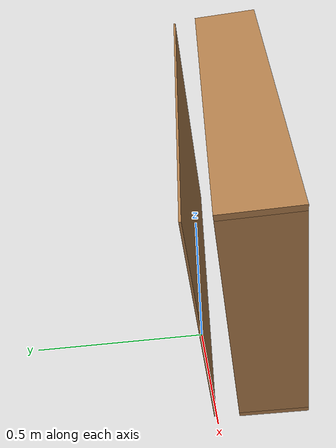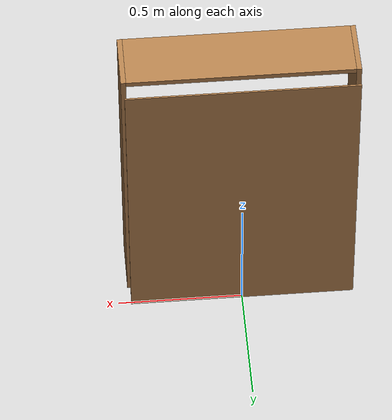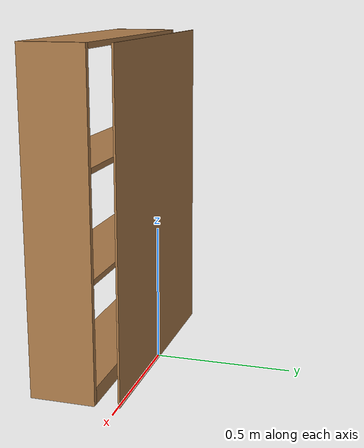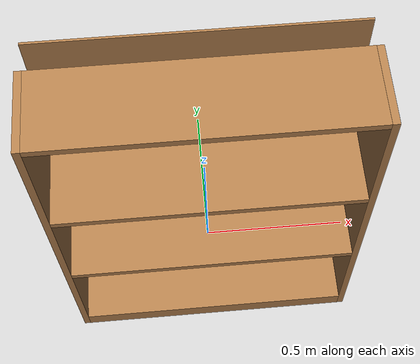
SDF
<?xml version='1.0'?>
<sdf version='1.7'>
  <model name='bookshelf_0'>
    <link name='link'>
      <inertial>
        <mass>0.599067</mass>
        <inertia>
          <ixx>0.00274522</ixx>
          <ixy>0</ixy>
          <ixz>0</ixz>
          <iyy>0.0386797</iyy>
          <iyz>0</iyz>
          <izz>0.041385</izz>
        </inertia>
        <pose>0 0 0 0 -0 0</pose>
      </inertial>
      <self_collide>0</self_collide>
      <enable_wind>0</enable_wind>
      <kinematic>0</kinematic>
      <pose>0 0 0 0 -0 0</pose>
      <visual name='visual1'>
        <pose>0 0.005 0.6 0 -0 0</pose>
        <geometry>
          <box>
            <size>0.9 0.006791 1.2</size>
          </box>
        </geometry>
        <material>
          <script>
            <uri>file://media/materials/scripts/gazebo.material</uri>
            <name>Gazebo/Wood</name>
          </script>
          <shader type='pixel'/>
        </material>
        <transparency>0</transparency>
        <cast_shadows>1</cast_shadows>
      </visual>
      <visual name='visual2'>
        <pose>0.45 -0.195 0.6 0 -0 0</pose>
        <geometry>
          <box>
            <size>0.02 0.233645 1.2</size>
          </box>
        </geometry>
        <material>
          <script>
            <uri>file://media/materials/scripts/gazebo.material</uri>
            <name>Gazebo/Wood</name>
          </script>
          <shader type='pixel'/>
        </material>
        <transparency>0</transparency>
        <cast_shadows>1</cast_shadows>
      </visual>
      <visual name='visual3'>
        <pose>-0.45 -0.195 0.6 0 -0 0</pose>
        <geometry>
          <box>
            <size>0.02 0.233645 1.2</size>
          </box>
        </geometry>
        <material>
          <script>
            <uri>file://media/materials/scripts/gazebo.material</uri>
            <name>Gazebo/Wood</name>
          </script>
          <shader type='pixel'/>
        </material>
        <transparency>0</transparency>
        <cast_shadows>1</cast_shadows>
      </visual>
      <visual name='visual4'>
        <pose>0 -0.195 0.03 0 -0 0</pose>
        <geometry>
          <box>
            <size>0.88 0.233645 0.06</size>
          </box>
        </geometry>
        <material>
          <script>
            <uri>file://media/materials/scripts/gazebo.material</uri>
            <name>Gazebo/Wood</name>
          </script>
          <shader type='pixel'/>
        </material>
        <transparency>0</transparency>
        <cast_shadows>1</cast_shadows>
      </visual>
      <visual name='visual5'>
        <pose>0 -0.195 1.19 0 -0 0</pose>
        <geometry>
          <box>
            <size>0.88 0.233645 0.02</size>
          </box>
        </geometry>
        <material>
          <script>
            <uri>file://media/materials/scripts/gazebo.material</uri>
            <name>Gazebo/Wood</name>
          </script>
          <shader type='pixel'/>
        </material>
        <transparency>0</transparency>
        <cast_shadows>1</cast_shadows>
      </visual>
      <visual name='visual6'>
        <pose>0 -0.195 0.43 0 -0 0</pose>
        <geometry>
          <box>
            <size>0.88 0.233645 0.02</size>
          </box>
        </geometry>
        <material>
          <script>
            <uri>file://media/materials/scripts/gazebo.material</uri>
            <name>Gazebo/Wood</name>
          </script>
          <shader type='pixel'/>
        </material>
        <transparency>0</transparency>
        <cast_shadows>1</cast_shadows>
      </visual>
      <visual name='visual7'>
        <pose>0 -0.195 0.8 0 -0 0</pose>
        <geometry>
          <box>
            <size>0.88 0.233645 0.02</size>
          </box>
        </geometry>
        <material>
          <script>
            <uri>file://media/materials/scripts/gazebo.material</uri>
            <name>Gazebo/Wood</name>
          </script>
          <shader type='pixel'/>
        </material>
        <transparency>0</transparency>
        <cast_shadows>1</cast_shadows>
      </visual>
      <collision name='back'>
        <laser_retro>0</laser_retro>
        <max_contacts>10</max_contacts>
        <pose>0 0.005 0.6 0 -0 0</pose>
        <geometry>
          <box>
            <size>0.9 0.006791 1.2</size>
          </box>
        </geometry>
        <surface>
          <friction>
            <ode>
              <mu>1</mu>
              <mu2>1</mu2>
              <fdir1>0 0 0</fdir1>
              <slip1>0</slip1>
              <slip2>0</slip2>
            </ode>
            <torsional>
              <coefficient>1</coefficient>
              <patch_radius>0</patch_radius>
              <surface_radius>0</surface_radius>
              <use_patch_radius>1</use_patch_radius>
              <ode>
                <slip>0</slip>
              </ode>
            </torsional>
          </friction>
          <bounce>
            <restitution_coefficient>0</restitution_coefficient>
            <threshold>1e+06</threshold>
          </bounce>
          <contact>
            <collide_without_contact>0</collide_without_contact>
            <collide_without_contact_bitmask>1</collide_without_contact_bitmask>
            <collide_bitmask>1</collide_bitmask>
            <ode>
              <soft_cfm>0</soft_cfm>
              <soft_erp>0.2</soft_erp>
              <kp>1e+13</kp>
              <kd>1</kd>
              <max_vel>0.01</max_vel>
              <min_depth>0</min_depth>
            </ode>
            <bullet>
              <split_impulse>1</split_impulse>
              <split_impulse_penetration_threshold>-0.01</split_impulse_penetration_threshold>
              <soft_cfm>0</soft_cfm>
              <soft_erp>0.2</soft_erp>
              <kp>1e+13</kp>
              <kd>1</kd>
            </bullet>
          </contact>
        </surface>
      </collision>
      <collision name='left_side'>
        <laser_retro>0</laser_retro>
        <max_contacts>10</max_contacts>
        <pose>0.45 -0.195 0.6 0 -0 0</pose>
        <geometry>
          <box>
            <size>0.02 0.233645 1.2</size>
          </box>
        </geometry>
        <surface>
          <friction>
            <ode>
              <mu>1</mu>
              <mu2>1</mu2>
              <fdir1>0 0 0</fdir1>
              <slip1>0</slip1>
              <slip2>0</slip2>
            </ode>
            <torsional>
              <coefficient>1</coefficient>
              <patch_radius>0</patch_radius>
              <surface_radius>0</surface_radius>
              <use_patch_radius>1</use_patch_radius>
              <ode>
                <slip>0</slip>
              </ode>
            </torsional>
          </friction>
          <bounce>
            <restitution_coefficient>0</restitution_coefficient>
            <threshold>1e+06</threshold>
          </bounce>
          <contact>
            <collide_without_contact>0</collide_without_contact>
            <collide_without_contact_bitmask>1</collide_without_contact_bitmask>
            <collide_bitmask>1</collide_bitmask>
            <ode>
              <soft_cfm>0</soft_cfm>
              <soft_erp>0.2</soft_erp>
              <kp>1e+13</kp>
              <kd>1</kd>
              <max_vel>0.01</max_vel>
              <min_depth>0</min_depth>
            </ode>
            <bullet>
              <split_impulse>1</split_impulse>
              <split_impulse_penetration_threshold>-0.01</split_impulse_penetration_threshold>
              <soft_cfm>0</soft_cfm>
              <soft_erp>0.2</soft_erp>
              <kp>1e+13</kp>
              <kd>1</kd>
            </bullet>
          </contact>
        </surface>
      </collision>
      <collision name='right_side'>
        <laser_retro>0</laser_retro>
        <max_contacts>10</max_contacts>
        <pose>-0.45 -0.195 0.6 0 -0 0</pose>
        <geometry>
          <box>
            <size>0.02 0.233645 1.2</size>
          </box>
        </geometry>
        <surface>
          <friction>
            <ode>
              <mu>1</mu>
              <mu2>1</mu2>
              <fdir1>0 0 0</fdir1>
              <slip1>0</slip1>
              <slip2>0</slip2>
            </ode>
            <torsional>
              <coefficient>1</coefficient>
              <patch_radius>0</patch_radius>
              <surface_radius>0</surface_radius>
              <use_patch_radius>1</use_patch_radius>
              <ode>
                <slip>0</slip>
              </ode>
            </torsional>
          </friction>
          <bounce>
            <restitution_coefficient>0</restitution_coefficient>
            <threshold>1e+06</threshold>
          </bounce>
          <contact>
            <collide_without_contact>0</collide_without_contact>
            <collide_without_contact_bitmask>1</collide_without_contact_bitmask>
            <collide_bitmask>1</collide_bitmask>
            <ode>
              <soft_cfm>0</soft_cfm>
              <soft_erp>0.2</soft_erp>
              <kp>1e+13</kp>
              <kd>1</kd>
              <max_vel>0.01</max_vel>
              <min_depth>0</min_depth>
            </ode>
            <bullet>
              <split_impulse>1</split_impulse>
              <split_impulse_penetration_threshold>-0.01</split_impulse_penetration_threshold>
              <soft_cfm>0</soft_cfm>
              <soft_erp>0.2</soft_erp>
              <kp>1e+13</kp>
              <kd>1</kd>
            </bullet>
          </contact>
        </surface>
      </collision>
      <collision name='bottom'>
        <laser_retro>0</laser_retro>
        <max_contacts>10</max_contacts>
        <pose>0 -0.195 0.03 0 -0 0</pose>
        <geometry>
          <box>
            <size>0.88 0.233645 0.06</size>
          </box>
        </geometry>
        <surface>
          <friction>
            <ode>
              <mu>1</mu>
              <mu2>1</mu2>
              <fdir1>0 0 0</fdir1>
              <slip1>0</slip1>
              <slip2>0</slip2>
            </ode>
            <torsional>
              <coefficient>1</coefficient>
              <patch_radius>0</patch_radius>
              <surface_radius>0</surface_radius>
              <use_patch_radius>1</use_patch_radius>
              <ode>
                <slip>0</slip>
              </ode>
            </torsional>
          </friction>
          <bounce>
            <restitution_coefficient>0</restitution_coefficient>
            <threshold>1e+06</threshold>
          </bounce>
          <contact>
            <collide_without_contact>0</collide_without_contact>
            <collide_without_contact_bitmask>1</collide_without_contact_bitmask>
            <collide_bitmask>1</collide_bitmask>
            <ode>
              <soft_cfm>0</soft_cfm>
              <soft_erp>0.2</soft_erp>
              <kp>1e+13</kp>
              <kd>1</kd>
              <max_vel>0.01</max_vel>
              <min_depth>0</min_depth>
            </ode>
            <bullet>
              <split_impulse>1</split_impulse>
              <split_impulse_penetration_threshold>-0.01</split_impulse_penetration_threshold>
              <soft_cfm>0</soft_cfm>
              <soft_erp>0.2</soft_erp>
              <kp>1e+13</kp>
              <kd>1</kd>
            </bullet>
          </contact>
        </surface>
      </collision>
      <collision name='top'>
        <laser_retro>0</laser_retro>
        <max_contacts>10</max_contacts>
        <pose>0 -0.195 1.19 0 -0 0</pose>
        <geometry>
          <box>
            <size>0.88 0.233645 0.02</size>
          </box>
        </geometry>
        <surface>
          <friction>
            <ode>
              <mu>1</mu>
              <mu2>1</mu2>
              <fdir1>0 0 0</fdir1>
              <slip1>0</slip1>
              <slip2>0</slip2>
            </ode>
            <torsional>
              <coefficient>1</coefficient>
              <patch_radius>0</patch_radius>
              <surface_radius>0</surface_radius>
              <use_patch_radius>1</use_patch_radius>
              <ode>
                <slip>0</slip>
              </ode>
            </torsional>
          </friction>
          <bounce>
            <restitution_coefficient>0</restitution_coefficient>
            <threshold>1e+06</threshold>
          </bounce>
          <contact>
            <collide_without_contact>0</collide_without_contact>
            <collide_without_contact_bitmask>1</collide_without_contact_bitmask>
            <collide_bitmask>1</collide_bitmask>
            <ode>
              <soft_cfm>0</soft_cfm>
              <soft_erp>0.2</soft_erp>
              <kp>1e+13</kp>
              <kd>1</kd>
              <max_vel>0.01</max_vel>
              <min_depth>0</min_depth>
            </ode>
            <bullet>
              <split_impulse>1</split_impulse>
              <split_impulse_penetration_threshold>-0.01</split_impulse_penetration_threshold>
              <soft_cfm>0</soft_cfm>
              <soft_erp>0.2</soft_erp>
              <kp>1e+13</kp>
              <kd>1</kd>
            </bullet>
          </contact>
        </surface>
      </collision>
      <collision name='low_shelf'>
        <laser_retro>0</laser_retro>
        <max_contacts>10</max_contacts>
        <pose>0 -0.195 0.43 0 -0 0</pose>
        <geometry>
          <box>
            <size>0.88 0.233645 0.02</size>
          </box>
        </geometry>
        <surface>
          <friction>
            <ode>
              <mu>1</mu>
              <mu2>1</mu2>
              <fdir1>0 0 0</fdir1>
              <slip1>0</slip1>
              <slip2>0</slip2>
            </ode>
            <torsional>
              <coefficient>1</coefficient>
              <patch_radius>0</patch_radius>
              <surface_radius>0</surface_radius>
              <use_patch_radius>1</use_patch_radius>
              <ode>
                <slip>0</slip>
              </ode>
            </torsional>
          </friction>
          <bounce>
            <restitution_coefficient>0</restitution_coefficient>
            <threshold>1e+06</threshold>
          </bounce>
          <contact>
            <collide_without_contact>0</collide_without_contact>
            <collide_without_contact_bitmask>1</collide_without_contact_bitmask>
            <collide_bitmask>1</collide_bitmask>
            <ode>
              <soft_cfm>0</soft_cfm>
              <soft_erp>0.2</soft_erp>
              <kp>1e+13</kp>
              <kd>1</kd>
              <max_vel>0.01</max_vel>
              <min_depth>0</min_depth>
            </ode>
            <bullet>
              <split_impulse>1</split_impulse>
              <split_impulse_penetration_threshold>-0.01</split_impulse_penetration_threshold>
              <soft_cfm>0</soft_cfm>
              <soft_erp>0.2</soft_erp>
              <kp>1e+13</kp>
              <kd>1</kd>
            </bullet>
          </contact>
        </surface>
      </collision>
      <collision name='high_shelf'>
        <laser_retro>0</laser_retro>
        <max_contacts>10</max_contacts>
        <pose>0 -0.195 0.8 0 -0 0</pose>
        <geometry>
          <box>
            <size>0.88 0.233645 0.02</size>
          </box>
        </geometry>
        <surface>
          <friction>
            <ode>
              <mu>1</mu>
              <mu2>1</mu2>
              <fdir1>0 0 0</fdir1>
              <slip1>0</slip1>
              <slip2>0</slip2>
            </ode>
            <torsional>
              <coefficient>1</coefficient>
              <patch_radius>0</patch_radius>
              <surface_radius>0</surface_radius>
              <use_patch_radius>1</use_patch_radius>
              <ode>
                <slip>0</slip>
              </ode>
            </torsional>
          </friction>
          <bounce>
            <restitution_coefficient>0</restitution_coefficient>
            <threshold>1e+06</threshold>
          </bounce>
          <contact>
            <collide_without_contact>0</collide_without_contact>
            <collide_without_contact_bitmask>1</collide_without_contact_bitmask>
            <collide_bitmask>1</collide_bitmask>
            <ode>
              <soft_cfm>0</soft_cfm>
              <soft_erp>0.2</soft_erp>
              <kp>1e+13</kp>
              <kd>1</kd>
              <max_vel>0.01</max_vel>
              <min_depth>0</min_depth>
            </ode>
            <bullet>
              <split_impulse>1</split_impulse>
              <split_impulse_penetration_threshold>-0.01</split_impulse_penetration_threshold>
              <soft_cfm>0</soft_cfm>
              <soft_erp>0.2</soft_erp>
              <kp>1e+13</kp>
              <kd>1</kd>
            </bullet>
          </contact>
        </surface>
      </collision>
    </link>
    <static>1</static>
    <allow_auto_disable>1</allow_auto_disable>
  </model>
</sdf>
